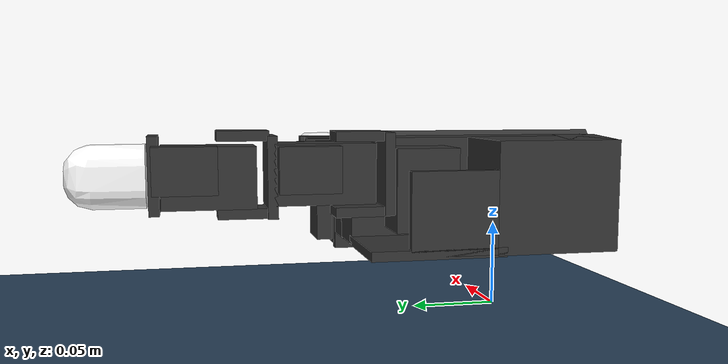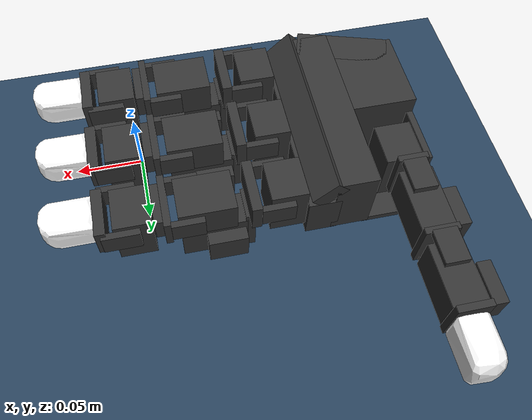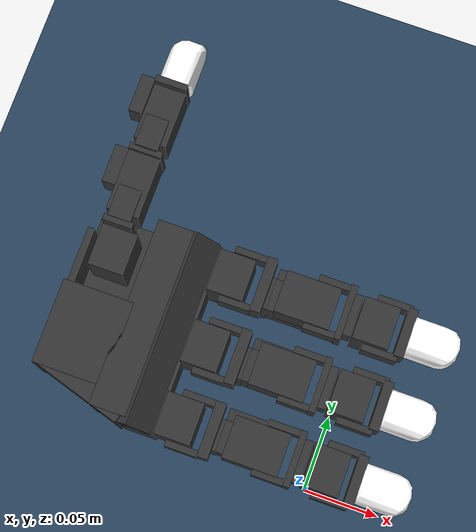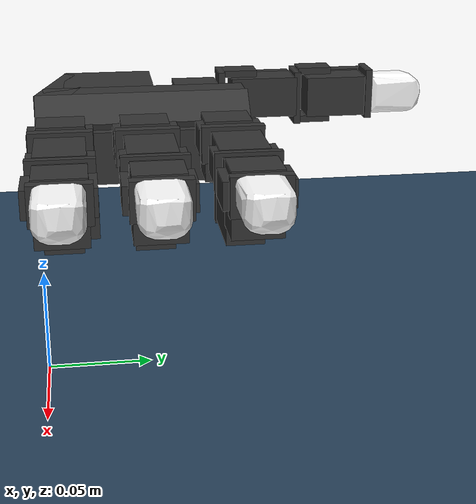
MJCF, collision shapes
<mujoco model="left leap hand scene">
  <include file="left_hand.xml"/>

  <visual>
    <headlight diffuse="0.6 0.6 0.6" ambient="0.3 0.3 0.3" specular="0 0 0"/>
    <rgba haze="0.15 0.25 0.35 1"/>
    <global azimuth="45" elevation="-50"/>
  </visual>

  <asset>
    <texture type="skybox" builtin="gradient" rgb1="0.3 0.5 0.7" rgb2="0 0 0" width="512" height="3072"/>
    <texture type="2d" name="groundplane" builtin="checker" mark="edge" rgb1="0.2 0.3 0.4" rgb2="0.1 0.2 0.3"
      markrgb="0.8 0.8 0.8" width="300" height="300"/>
    <material name="groundplane" texture="groundplane" texuniform="true" texrepeat="5 5" reflectance="0.2"/>
  </asset>

  <worldbody>
    <light pos="0 0 1" dir="0 0 -1" directional="true"/>
    <geom name="floor" size="0 0 0.05" type="plane" material="groundplane"/>
  </worldbody>
</mujoco>

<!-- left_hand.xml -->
<mujoco model="leap_rh">
  <compiler angle="radian" meshdir="./assets/"/>
  <option integrator="implicitfast" cone="elliptic" impratio="100"/>

  <asset>
    <material name="black" rgba="0.2 0.2 0.2 1"/>
    <material name="white" rgba="1 1 1 1"/>

    <mesh name="palm" file="palm_left.obj"/>
    <mesh name="base" file="base.obj"/>
    <mesh name="proximal" file="proximal.obj"/>
    <mesh name="medial" file="medial.obj"/>
    <mesh name="distal" file="distal.obj"/>
    <mesh name="tip" file="tip.obj"/>
    <mesh name="thumb_mp_left" file="thumb_mp_left.obj"/>
    <mesh name="thumb_base" file="thumb_base.obj"/>
    <mesh name="thumb_proximal" file="thumb_proximal.obj"/>
    <mesh name="thumb_distal" file="thumb_distal.obj"/>
    <mesh name="thumb_tip" file="thumb_tip.obj"/>
  </asset>

  <!-- defaults -->
  <default>
    <!-- constraint stiffness -->
    <geom solimp="0.999 0.999 0.001 0.0001 1" solref="0.0001 1" friction=".2"/>

    <!-- actuator defaults -->
    <position kp="3.0" kv="0.01"/>
    <joint damping="0.03" frictionloss="0.001"/>

    <!-- geom class defaults -->
    <default class="visual">
      <geom group="1" type="mesh" contype="0" conaffinity="0" density="0" material="black"/>
    </default>
    <default class="collision">
      <geom material="black"/>
    </default>
    <default class="tip">
      <geom type="mesh" mesh="tip" friction="0.5" material="white"/>
    </default>
    <default class="thumb_tip">
      <geom type="mesh" mesh="thumb_tip" friction="0.5" material="white"/>
    </default>

    <!-- joint class defaults -->
    <default class="mcp">
      <joint pos="0 0 0" axis="0 0 -1" limited="true" range="-0.314 2.23"/>
      <position ctrlrange="-0.314 2.23"/>
    </default>
    <default class="rot">
      <joint pos="0 0 0" axis="0 0 -1" limited="true" range="-1.047 1.047"/>
      <position ctrlrange="-1.047 1.047"/>
    </default>
    <default class="pip">
      <joint pos="0 0 0" axis="0 0 -1" limited="true" range="-0.506 1.885"/>
      <position ctrlrange="-0.506 1.885"/>
    </default>
    <default class="dip">
      <joint pos="0 0 0" axis="0 0 -1" limited="true" range="-0.366 2.042"/>
      <position ctrlrange="-0.366 2.042"/>
    </default>
    <default class="thumb_cmc">
      <joint pos="0 0 0" axis="0 0 1" limited="true" range="-0.349 2.094"/>
      <position ctrlrange="-0.349 2.094"/>
    </default>
    <default class="thumb_axl">
      <joint pos="0 0 0" axis="0 0 -1" limited="true" range="-0.349 2.094"/>
      <position ctrlrange="-0.349 2.094"/>
    </default>
    <default class="thumb_mcp">
      <joint pos="0 0 0" axis="0 0 -1" limited="true" range="-0.47 2.443"/>
      <position ctrlrange="-0.47 2.443"/>
    </default>
    <default class="thumb_ipl">
      <joint pos="0 0 0" axis="0 0 -1" limited="true" range="-1.34 1.88"/>
      <position ctrlrange="-1.34 1.88"/>
    </default>
  </default>

  <!-- collision filtering -->
  <contact>
    <!-- filter the palm from all other finger bodies except the tips -->
    <exclude body1="palm" body2="if_bs"/>
    <exclude body1="palm" body2="mf_bs"/>
    <exclude body1="palm" body2="rf_bs"/>
    <exclude body1="palm" body2="th_mp"/>

    <exclude body1="palm" body2="if_px"/>
    <exclude body1="palm" body2="mf_px"/>
    <exclude body1="palm" body2="rf_px"/>
    <exclude body1="palm" body2="th_bs"/>

    <exclude body1="palm" body2="if_md"/>
    <exclude body1="palm" body2="mf_md"/>
    <exclude body1="palm" body2="rf_md"/>
    <exclude body1="palm" body2="th_px"/>

    <!-- none of the base fingertip geoms can touch each other -->
    <exclude body1="if_bs" body2="mf_bs"/>
    <exclude body1="if_bs" body2="rf_bs"/>
    <exclude body1="mf_bs" body2="rf_bs"/>

    <exclude body1="th_mp" body2="if_bs"/>
    <exclude body1="th_mp" body2="mf_bs"/>
    <exclude body1="th_mp" body2="rf_bs"/>
  </contact>

  <!-- actuators -->
  <actuator>
    <!-- index -->
    <position name="if_mcp_act" joint="if_mcp" class="mcp"/>
    <position name="if_rot_act" joint="if_rot" class="rot"/>
    <position name="if_pip_act" joint="if_pip" class="pip"/>
    <position name="if_dip_act" joint="if_dip" class="dip"/>

    <!-- middle -->
    <position name="mf_mcp_act" joint="mf_mcp" class="mcp"/>
    <position name="mf_rot_act" joint="mf_rot" class="rot"/>
    <position name="mf_pip_act" joint="mf_pip" class="pip"/>
    <position name="mf_dip_act" joint="mf_dip" class="dip"/>

    <!-- ring -->
    <position name="rf_mcp_act" joint="rf_mcp" class="mcp"/>
    <position name="rf_rot_act" joint="rf_rot" class="rot"/>
    <position name="rf_pip_act" joint="rf_pip" class="pip"/>
    <position name="rf_dip_act" joint="rf_dip" class="dip"/>

    <!-- thumb -->
    <position name="th_cmc_act" joint="th_cmc" class="thumb_cmc"/>
    <position name="th_axl_act" joint="th_axl" class="thumb_axl"/>
    <position name="th_mcp_act" joint="th_mcp" class="thumb_mcp"/>
    <position name="th_ipl_act" joint="th_ipl" class="thumb_ipl"/>
  </actuator>

  <!-- sensors -->
  <sensor>
    <!-- index -->
    <jointpos name="if_mcp_sensor" joint="if_mcp"/>
    <jointpos name="if_rot_sensor" joint="if_rot"/>
    <jointpos name="if_pip_sensor" joint="if_pip"/>
    <jointpos name="if_dip_sensor" joint="if_dip"/>

    <!-- middle -->
    <jointpos name="mf_mcp_sensor" joint="mf_mcp"/>
    <jointpos name="mf_rot_sensor" joint="mf_rot"/>
    <jointpos name="mf_pip_sensor" joint="mf_pip"/>
    <jointpos name="mf_dip_sensor" joint="mf_dip"/>

    <!-- ring -->
    <jointpos name="rf_mcp_sensor" joint="rf_mcp"/>
    <jointpos name="rf_rot_sensor" joint="rf_rot"/>
    <jointpos name="rf_pip_sensor" joint="rf_pip"/>
    <jointpos name="rf_dip_sensor" joint="rf_dip"/>

    <!-- thumb -->
    <jointpos name="th_cmc_sensor" joint="th_cmc"/>
    <jointpos name="th_axl_sensor" joint="th_axl"/>
    <jointpos name="th_mcp_sensor" joint="th_mcp"/>
    <jointpos name="th_ipl_sensor" joint="th_ipl"/>
  </sensor>

  <worldbody>
    <body name="palm" pos="0 0 0.1" quat="0 1 0 0">
      <!-- palm -->
      <inertial pos="-0.12546 -0.047739 0.015867" quat="0.423786 0.570263 -0.402758 0.577054" mass="0.235"
        diaginertia="0.000405067 0.000304529 0.000179484"/>
      <geom name="palm_visual" pos="-0.0955 -0.117 0.0207" quat="9.38189e-07 9.38183e-07 0.707105 0.707109"
        class="visual" mesh="palm"/>
      <geom name="palm_collision_1" size="0.011 0.013 0.017" pos="-0.0848 -0.0996 0.0152" type="box" class="collision"/>
      <geom name="palm_collision_2" size="0.011 0.013 0.017" pos="-0.0848 -0.0546 0.0152" type="box" class="collision"/>
      <geom name="palm_collision_3" size="0.011 0.013 0.017" pos="-0.0848 -0.0096 0.0152" type="box" class="collision"/>
      <geom name="palm_collision_4" size="0.029 0.01 0.023" pos="-0.1428 -0.0126 0.0147" quat="0.989016 0 0 0.147806"
        type="box" class="collision"/>
      <geom name="palm_collision_5" size="0.01 0.06 0.015" pos="-0.1058 -0.0555 0.0232" type="box" class="collision"/>
      <geom name="palm_collision_6" size="0.005 0.06 0.01" pos="-0.1078 -0.0555 0.0002" quat="0.923956 0 0.382499 0"
        type="box" class="collision"/>
      <geom name="palm_collision_7" size="0.012 0.058 0.023" pos="-0.1238 -0.0575 0.0147" type="box" class="collision"/>
      <geom name="palm_collision_8" size="0.022 0.026 0.023" pos="-0.1538 -0.0375 0.0147" type="box" class="collision"/>
      <geom name="palm_collision_9" size="0.002 0.018 0.017" pos="-0.1738 -0.0815 0.0202" type="box" class="collision"/>
      <geom name="palm_collision_10" size="0.022 0.028 0.002" pos="-0.1538 -0.0875 0.0362" type="box"
        class="collision"/>

      <!-- index -->
      <body name="if_bs" pos="-0.0825 -0.0857 0.0078" quat="0.500003 0.5 0.5 -0.499997">
        <inertial pos="-0.022516 0.033882 0.016359" quat="0.388092 0.677951 -0.247713 0.573067" mass="0.044"
          diaginertia="1.74972e-05 1.61504e-05 7.21342e-06"/>
        <joint name="if_mcp" class="mcp"/>
        <geom name="if_bs_visual" pos="0.0084 0.0077 0.01465" quat="1 0 0 0" class="visual" mesh="base"/>
        <geom name="if_bs_collision_1" size="0.01 0.003 0.017" pos="0 0.018 0.0147" type="box" class="collision"/>
        <geom name="if_bs_collision_2" size="0.014 0.02 0.01" pos="-0.027 0.042 0.015" type="box" class="collision"/>
        <geom name="if_bs_collision_3" size="0.017 0.003 0.01" pos="-0.0262 0.02 0.0146" type="box" class="collision"/>
        <geom name="if_bs_collision_4" size="0.01 0.012 0.004" pos="-0.0295 0.035 0.029" type="box" class="collision"/>
        <geom name="if_bs_collision_5" size="0.007 0.01 0.002" pos="0 0.005 0.03" type="box" class="collision"/>
        <geom name="if_bs_collision_6" size="0.007 0.01 0.002" pos="0 0.005 -0.001" type="box" class="collision"/>

        <body name="if_px" pos="-0.0122 0.0381 0.0145" quat="0.500003 -0.5 -0.499997 0.5">
          <inertial pos="0.0075 -0.0002 -0.011" quat="0 0.707107 0 0.707107" mass="0.032"
            diaginertia="4.8853e-06 4.3733e-06 3.0933e-06"/>
          <joint name="if_rot" class="rot"/>
          <geom name="if_px_visual" pos="0.0096 0.0002 0.0007" quat="0.500003 -0.5 -0.5 -0.499997" class="visual"
            mesh="proximal"/>
          <geom name="if_px_collision" size="0.017 0.013 0.011" pos="0.0075 -0.0002 -0.011" type="box"
            class="collision"/>

          <body name="if_md" pos="0.015 0.0143 -0.013" quat="0.500003 0.5 -0.5 0.499997">
            <inertial pos="0.0054215 -0.029148 0.015" quat="0.687228 0.687228 0.166487 0.166487" mass="0.037"
              diaginertia="8.28004e-06 8.1598e-06 5.39516e-06"/>
            <joint name="if_pip" class="pip"/>
            <geom name="if_md_visual" pos="0.0211 -0.0084 0.0097" quat="2.67949e-08 -1 0 0" class="visual"
              mesh="medial"/>
            <geom name="if_md_collision_1" size="0.008 0.003 0.013" pos="0 -0.02 0.015" type="box" class="collision"/>
            <geom name="if_md_collision_2" size="0.01 0.002 0.017" pos="0 -0.016 0.015" type="box" class="collision"/>
            <geom name="if_md_collision_3" size="0.007 0.01 0.002" pos="0 -0.0045 0.03" type="box" class="collision"/>
            <geom name="if_md_collision_4" size="0.007 0.01 0.002" pos="0 -0.0045 0" type="box" class="collision"/>
            <geom name="if_md_collision_5" size="0.017 0.011 0.013" pos="0.0075 -0.035 0.015" type="box"
              class="collision"/>

            <body name="if_ds" pos="0 -0.0361 0.0002">
              <inertial pos="-0.0008794 -0.027019 0.014594" quat="0.702905 0.710643 -0.0212937 -0.0214203" mass="0.016"
                diaginertia="3.71863e-06 3.02396e-06 1.6518e-06"/>
              <joint name="if_dip" class="dip"/>
              <geom name="if_ds_visual" pos="0.0132 -0.0061 0.0144" quat="2.67949e-08 1 0 0" class="visual"
                mesh="distal"/>
              <geom name="if_ds_collision_1" size="0.01 0.003 0.015" pos="0 -0.017 0.015" type="box" class="collision"/>
              <geom name="if_ds_collision_2" size="0.007 0.011 0.002" pos="0 -0.006 0.03" type="box" class="collision"/>
              <geom name="if_ds_collision_3" size="0.007 0.011 0.002" pos="0 -0.006 -0.001" type="box"
                class="collision"/>

              <geom name="if_tip" class="tip"/>
            </body>
          </body>
        </body>
      </body>
      <!-- index -->

      <!-- middle -->
      <body name="mf_bs" pos="-0.0825 -0.0403 0.0078" quat="0.500003 0.5 0.5 -0.499997">
        <inertial pos="-0.022516 0.033882 0.016359" quat="0.388092 0.677951 -0.247713 0.573067" mass="0.044"
          diaginertia="1.74972e-05 1.61504e-05 7.21342e-06"/>
        <joint name="mf_mcp" class="mcp"/>
        <geom name="mf_bs_visual" pos="0.0084 0.0077 0.01465" quat="1 0 0 0" class="visual" mesh="base"/>
        <geom name="mf_bs_collision_1" size="0.01 0.003 0.017" pos="0 0.018 0.0147" type="box" class="collision"/>
        <geom name="mf_bs_collision_2" size="0.014 0.02 0.01" pos="-0.027 0.042 0.015" type="box" class="collision"/>
        <geom name="mf_bs_collision_3" size="0.017 0.003 0.01" pos="-0.0262 0.02 0.0146" type="box" class="collision"/>
        <geom name="mf_bs_collision_4" size="0.01 0.012 0.004" pos="-0.0295 0.035 0.029" type="box" class="collision"/>
        <geom name="mf_bs_collision_5" size="0.007 0.01 0.002" pos="0 0.005 0.03" type="box" class="collision"/>
        <geom name="mf_bs_collision_6" size="0.007 0.01 0.002" pos="0 0.005 -0.001" type="box" class="collision"/>

        <body name="mf_px" pos="-0.0122 0.0381 0.0145" quat="0.500003 -0.5 -0.499997 0.5">
          <inertial pos="0.0075 -0.0002 -0.011" quat="0 0.707107 0 0.707107" mass="0.032"
            diaginertia="4.8853e-06 4.3733e-06 3.0933e-06"/>
          <joint name="mf_rot" class="rot"/>
          <geom name="mf_px_visual" pos="0.0096 0.0003 0.0007" quat="0.500003 -0.5 -0.5 -0.499997" class="visual"
            mesh="proximal"/>
          <geom name="mf_px_collision" size="0.017 0.013 0.011" pos="0.0075 -0.0002 -0.011" type="box"
            class="collision"/>

          <body name="mf_md" pos="0.015 0.0143 -0.013" quat="0.500003 0.5 -0.5 0.499997">
            <inertial pos="0.0054215 -0.029148 0.015" quat="0.687228 0.687228 0.166487 0.166487" mass="0.037"
              diaginertia="8.28004e-06 8.1598e-06 5.39516e-06"/>
            <joint name="mf_pip" class="pip"/>
            <geom name="mf_md_visual" pos="0.0211 -0.0084 0.0097" quat="1.32679e-06 -1 0 0" class="visual"
              mesh="medial"/>
            <geom name="mf_md_collision_1" size="0.008 0.003 0.013" pos="0 -0.02 0.015" type="box" class="collision"/>
            <geom name="mf_md_collision_2" size="0.01 0.002 0.017" pos="0 -0.016 0.015" type="box" class="collision"/>
            <geom name="mf_md_collision_3" size="0.007 0.01 0.002" pos="0 -0.0045 0.03" type="box" class="collision"/>
            <geom name="mf_md_collision_4" size="0.007 0.01 0.002" pos="0 -0.0045 0" type="box" class="collision"/>
            <geom name="mf_md_collision_5" size="0.017 0.011 0.013" pos="0.0075 -0.035 0.015" type="box"
              class="collision"/>

            <body name="mf_ds" pos="0 -0.0361 0.0002">
              <inertial pos="-0.0008794 -0.027019 0.014594" quat="0.702905 0.710643 -0.0212937 -0.0214203" mass="0.016"
                diaginertia="3.71863e-06 3.02396e-06 1.6518e-06"/>
              <joint name="mf_dip" class="dip"/>
              <geom name="mf_ds_visual" pos="0.0132 -0.0061 0.0145" quat="1.32679e-06 1 0 0" class="visual"
                mesh="distal"/>
              <geom name="mf_ds_collision_1" size="0.01 0.003 0.015" pos="0 -0.017 0.015" type="box" class="collision"/>
              <geom name="mf_ds_collision_2" size="0.007 0.011 0.002" pos="0 -0.006 0.03" type="box" class="collision"/>
              <geom name="mf_ds_collision_3" size="0.007 0.011 0.002" pos="0 -0.006 -0.001" type="box"
                class="collision"/>

              <geom name="mf_tip" class="tip"/>
            </body>
          </body>
        </body>
      </body>
      <!-- middle -->

      <!-- ring -->
      <body name="rf_bs" pos="-0.0825 0.0051 0.0078" quat="0.500003 0.5 0.5 -0.499997">
        <inertial pos="-0.022516 0.033882 0.016359" quat="0.388092 0.677951 -0.247713 0.573067" mass="0.044"
          diaginertia="1.74972e-05 1.61504e-05 7.21342e-06"/>
        <joint name="rf_mcp" class="mcp"/>
        <geom name="rf_bs_visual" pos="0.0084 0.0077 0.01465" quat="1 0 0 0" class="visual" mesh="base"/>
        <geom name="rf_bs_collision_1" size="0.01 0.003 0.017" pos="0 0.018 0.0147" type="box" class="collision"/>
        <geom name="rf_bs_collision_2" size="0.014 0.02 0.01" pos="-0.027 0.042 0.015" type="box" class="collision"/>
        <geom name="rf_bs_collision_3" size="0.017 0.003 0.01" pos="-0.0262 0.02 0.0146" type="box" class="collision"/>
        <geom name="rf_bs_collision_4" size="0.01 0.012 0.004" pos="-0.0295 0.035 0.029" type="box" class="collision"/>
        <geom name="rf_bs_collision_5" size="0.007 0.01 0.002" pos="0 0.005 0.03" type="box" class="collision"/>
        <geom name="rf_bs_collision_6" size="0.007 0.01 0.002" pos="0 0.005 -0.001" type="box" class="collision"/>

        <body name="rf_px" pos="-0.0122 0.0381 0.0145" quat="0.500003 -0.5 -0.499997 0.5">
          <inertial pos="0.0075 -0.0002 -0.011" quat="0 0.707107 0 0.707107" mass="0.032"
            diaginertia="4.8853e-06 4.3733e-06 3.0933e-06"/>
          <joint name="rf_rot" class="rot"/>
          <geom name="rf_px_visual" pos="0.0096 0.0003 0.0007" quat="0.500003 -0.5 -0.5 -0.499997" class="visual"
            mesh="proximal"/>
          <geom name="rf_px_collision" size="0.017 0.013 0.011" pos="0.0075 -0.0002 -0.011" type="box"
            class="collision"/>

          <body name="rf_md" pos="0.015 0.0143 -0.013" quat="0.500003 0.5 -0.5 0.499997">
            <inertial pos="0.0054215 -0.029148 0.015" quat="0.687228 0.687228 0.166487 0.166487" mass="0.037"
              diaginertia="8.28004e-06 8.1598e-06 5.39516e-06"/>
            <joint name="rf_pip" class="pip"/>
            <geom name="rf_md_visual" pos="0.0211 -0.0084 0.0097" quat="1.32679e-06 -1 0 0" class="visual"
              mesh="medial"/>
            <geom name="rf_md_collision_1" size="0.008 0.003 0.013" pos="0 -0.02 0.015" type="box" class="collision"/>
            <geom name="rf_md_collision_2" size="0.01 0.002 0.017" pos="0 -0.016 0.015" type="box" class="collision"/>
            <geom name="rf_md_collision_3" size="0.007 0.01 0.002" pos="0 -0.0045 0.03" type="box" class="collision"/>
            <geom name="rf_md_collision_4" size="0.007 0.01 0.002" pos="0 -0.0045 0" type="box" class="collision"/>
            <geom name="rf_md_collision_5" size="0.017 0.011 0.013" pos="0.0075 -0.035 0.015" type="box"
              class="collision"/>

            <body name="rf_ds" pos="0 -0.03609 0.0002">
              <inertial pos="-0.0008794 -0.027019 0.014594" quat="0.702905 0.710643 -0.0212937 -0.0214203" mass="0.016"
                diaginertia="3.71863e-06 3.02396e-06 1.6518e-06"/>
              <joint name="rf_dip" class="dip"/>
              <geom name="rf_ds_visual" pos="0.0132 -0.0061 0.0145" quat="1.32679e-06 1 0 0" class="visual"
                mesh="distal"/>
              <geom name="rf_ds_collision_1" size="0.01 0.003 0.015" pos="0 -0.017 0.015" type="box" class="collision"/>
              <geom name="rf_ds_collision_2" size="0.007 0.011 0.002" pos="0 -0.006 0.03" type="box" class="collision"/>
              <geom name="rf_ds_collision_3" size="0.007 0.011 0.002" pos="0 -0.006 -0.001" type="box"
                class="collision"/>

              <geom name="rf_tip" class="tip"/>
            </body>
          </body>
        </body>
      </body>
      <!-- ring -->

      <!-- thumb -->
      <body name="th_mp" pos="-0.1448 -0.09 0.0049" quat="0.707109 0 0.707105 0">
        <inertial pos="-0.0069 0 -0.0109" quat="0 0.707107 0 0.707107" mass="0.032"
          diaginertia="4.8853e-06 4.3733e-06 3.0933e-06"/>
        <joint name="th_cmc" class="thumb_cmc"/>
        <geom name="th_mp_visual" pos="0.0439 0.0068 0.02146" quat="0.707109 0.707105 0 0" class="visual"
          mesh="thumb_mp_left"/>
        <geom name="th_mp_collision" size="0.017 0.013 0.011" pos="-0.0069 0 -0.0109" type="box" class="collision"/>

        <body name="th_bs" pos="0 -0.0143 -0.013" quat="0.500003 -0.5 -0.5 -0.499997">
          <inertial pos="0 0 -0.0070806" quat="0.707107 0.707107 0 0" mass="0.003"
            diaginertia="6.1932e-07 5.351e-07 2.1516e-07"/>
          <joint name="th_axl" class="thumb_axl"/>
          <geom name="th_bs_visual" pos="0.01196 0 -0.0158" quat="0.707109 0.707105 0 0" class="visual"
            mesh="thumb_base"/>
          <geom name="th_bs_collision_1" size="0.009 0.0165 0.002" pos="0 0 -0.0015" type="box" class="collision"/>
          <geom name="th_bs_collision_2" size="0.007 0.002 0.01" pos="0 -0.015 -0.013" type="box" class="collision"/>
          <geom name="th_bs_collision_3" size="0.007 0.002 0.01" pos="0 0.015 -0.013" type="box" class="collision"/>

          <body name="th_px" pos="0 0.0145 -0.017" quat="0.707109 -0.707105 0 0">
            <inertial pos="-0.0020593 0.015912 -0.013733" quat="0.698518 0.697382 -0.104933 0.121324" mass="0.038"
              diaginertia="9.87104e-06 9.32653e-06 4.36203e-06"/>
            <joint name="th_mcp" class="thumb_mcp"/>
            <geom name="th_px_visual" pos="0.0439 0.0579 -0.0086" quat="1 0 0 0" class="visual" mesh="thumb_proximal"/>
            <geom name="th_px_collision_1" size="0.01 0.02 0.012" pos="0 0.0105 -0.014" type="box" class="collision"/>
            <geom name="th_px_collision_2" size="0.01 0.002 0.016" pos="0 0.031 -0.015" type="box" class="collision"/>
            <geom name="th_px_collision_3" size="0.007 0.01 0.002" pos="0 0.042 0.001" type="box" class="collision"/>
            <geom name="th_px_collision_4" size="0.007 0.01 0.002" pos="0 0.042 -0.029" type="box" class="collision"/>
            <geom name="th_px_collision_5" size="0.005 0.012 0.009" pos="-0.0135 0.0175 -0.011656" type="box"
              class="collision"/>

            <body name="th_ds" pos="0 0.0466 0.0002" quat="1.32679e-06 0 0 1">
              <inertial pos="0.00096191 -0.024203 -0.014419" quat="0.35287 0.311272 -0.632839 0.614904" mass="0.049"
                diaginertia="2.08591e-05 2.0402e-05 4.71335e-06"/>
              <joint name="th_ipl" class="thumb_ipl"/>
              <geom name="th_ds_visual" pos="0.0625 0.0784 0.0489" quat="1 0 0 0" class="visual" mesh="thumb_distal"/>
              <geom name="th_ds_collision_1" size="0.01 0.018 0.012" pos="0 -0.0085 -0.015" type="box"
                class="collision"/>
              <geom name="th_ds_collision_2" size="0.01 0.002 0.015" pos="0 -0.029 -0.014" type="box"
                class="collision"/>
              <geom name="th_ds_collision_3" size="0.004 0.012 0.009" pos="0.015 -0.0175 -0.0115" type="box"
                class="collision"/>

              <geom name="th_tip" class="thumb_tip"/>
            </body>
          </body>
        </body>
      </body>
      <!-- thumb -->
    </body>
    <!-- palm -->
  </worldbody>
</mujoco>
